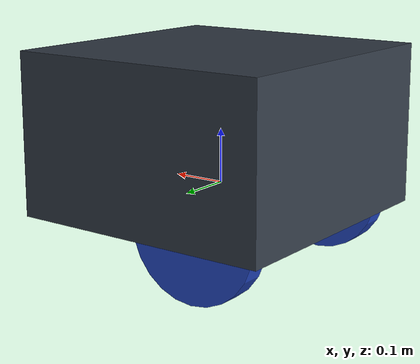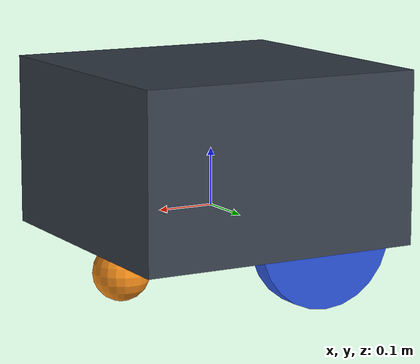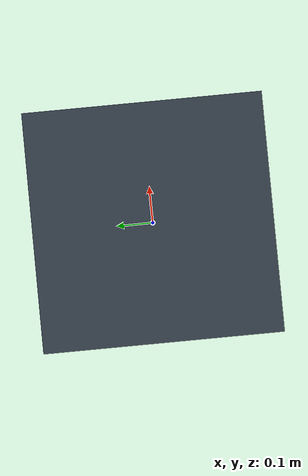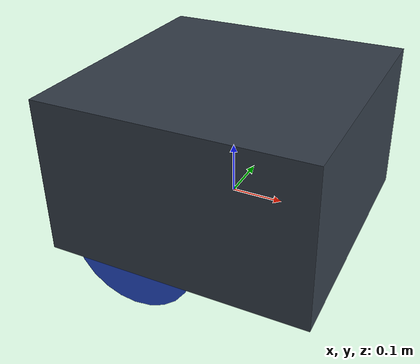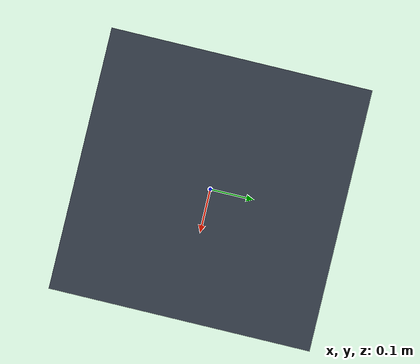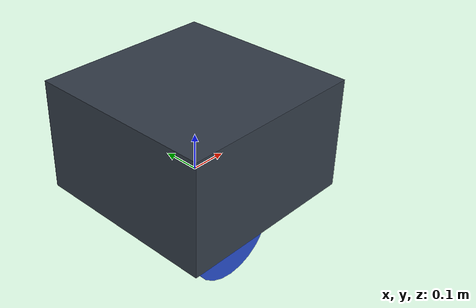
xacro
<?xml version="1.0"?>
<robot name="g_robot" xmlns:xacro="http://www.ros.org/wiki/xacro">
    <material name="black">
        <color rgba="0.0 0.0 0.0 1.0" />
    </material>
    <material name="blue">
        <color rgba="0.203125 0.23828125 0.28515625 1.0" />
    </material>
    <material name="green">
        <color rgba="0.0 0.8 0.0 1.0" />
    </material>
    <material name="grey">
        <color rgba="0.2 0.2 0.2 1.0" />
    </material>
    <material name="orange">
        <color rgba="1.0 0.423529411765 0.0392156862745 1.0" />
    </material>
    <material name="brown">
        <color rgba="0.870588235294 0.811764705882 0.764705882353 1.0" />
    </material>
    <material name="red">
        <color rgba="0.80078125 0.12890625 0.1328125 1.0" />
    </material>
    <material name="white">
        <color rgba="1.0 1.0 1.0 1.0" />
    </material>

    <gazebo reference="link_chassis">
        <material>Gazebo/Orange</material>
    </gazebo>
    <gazebo reference="link_left_wheel">
        <material>Gazebo/Blue</material>
    </gazebo>
    <gazebo reference="link_right_wheel">
        <material>Gazebo/Blue</material>
    </gazebo>

    <!-- TODO: fix drift -->

    <link name="link_chassis">
        <!-- pose and inertial -->
        <pose>0 0 0 0 0 0</pose>
        <inertial>
            <mass value="5" />
            <origin rpy="0 0 0" xyz="0 0 0.1" />
            <inertia ixx="0.159375" ixy="0" ixz="0" iyy="0.159375" iyz="0" izz="0.234375" />
        </inertial>
        <!-- body -->
        <collision name="collision_chassis">
            <origin rpy="0 0 0" xyz="0 0 0.1" />
            <geometry>
                <box size="0.5 0.5 0.3" />
            </geometry>
        </collision>
        <visual>
            <origin rpy="0 0 0" xyz="0 0 0.1" />
            <geometry>
                <box size="0.5 0.5 0.3" />
            </geometry>
            <material name="blue" />
        </visual>
        <!-- caster front -->
        <collision name="caster_front_collision">
            <origin rpy="0 0 0" xyz="0.175 0 -0.1" />
            <geometry>
                <sphere radius="0.05" />
            </geometry>
        </collision>
        <visual name="caster_front_visual">
            <origin rpy="0 0 0" xyz="0.175 0 -0.1" />
            <geometry>
                <sphere radius="0.05" />
            </geometry>
        </visual>
    </link>

    <link name="link_right_wheel">
        <inertial>
            <mass value="0.2" />
            <origin rpy="0 0 0" xyz="0 0 0" />
            <inertia ixx="0.0008" ixy="0" ixz="0" iyy="0.0015" iyz="0" izz="0.0008" />
        </inertial>
        <collision name="link_right_wheel_collision">
            <origin rpy="0 1.5708 1.5708" xyz="0 0 0" />
            <geometry>
                <cylinder length="0.04" radius="0.125" />
            </geometry>
        </collision>
        <visual name="link_right_wheel_visual">
            <origin rpy="0 1.5708 1.5708" xyz="0 0 0" />
            <geometry>
                <cylinder length="0.04" radius="0.125" />
            </geometry>
        </visual>
    </link>

    <joint name="joint_right_wheel" type="continuous">
        <origin rpy="0 0 0" xyz="-0.1 -0.2 -0.025" />
        <child link="link_right_wheel" />
        <parent link="link_chassis" />
        <axis rpy="0 0 0" xyz="0 1 0" />
    </joint>

    <link name="link_left_wheel">
        <inertial>
            <mass value="0.2" />
            <origin rpy="0 0 0" xyz="0 0 0" />
            <inertia ixx="0.0008" ixy="0" ixz="0" iyy="0.0015" iyz="0" izz="0.0008" />
        </inertial>
        <collision name="link_left_wheel_collision">
            <origin rpy="0 1.5708 1.5708" xyz="0 0 0" />
            <geometry>
                <cylinder length="0.04" radius="0.125" />
            </geometry>
        </collision>
        <visual name="link_left_wheel_visual">
            <origin rpy="0 1.5708 1.5708" xyz="0 0 0" />
            <geometry>
                <cylinder length="0.04" radius="0.125" />
            </geometry>
        </visual>
    </link>

    <joint name="joint_left_wheel" type="continuous">
        <origin rpy="0 0 0" xyz="-0.1 0.2 -0.025" />
        <child link="link_left_wheel" />
        <parent link="link_chassis" />
        <axis rpy="0 0 0" xyz="0 1 0" />
    </joint>

</robot>
